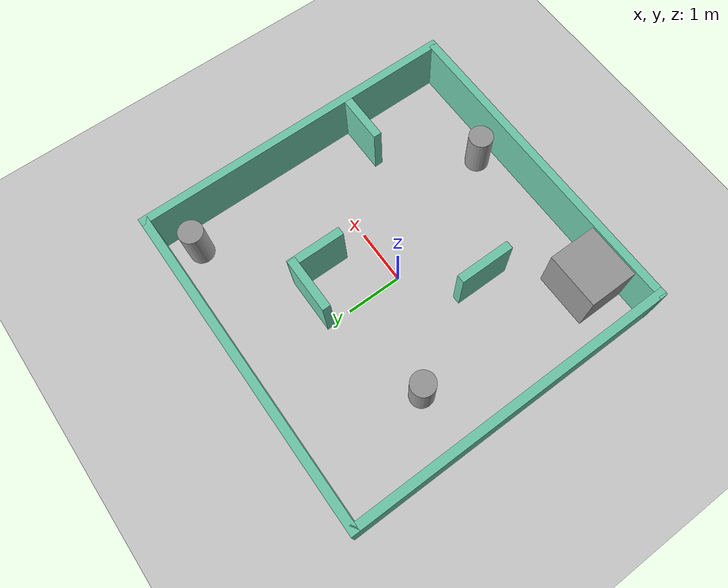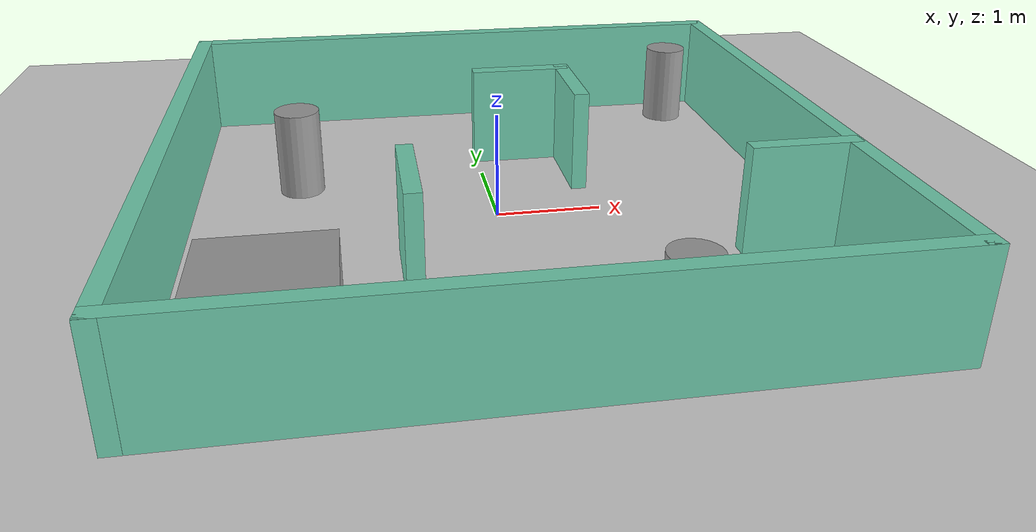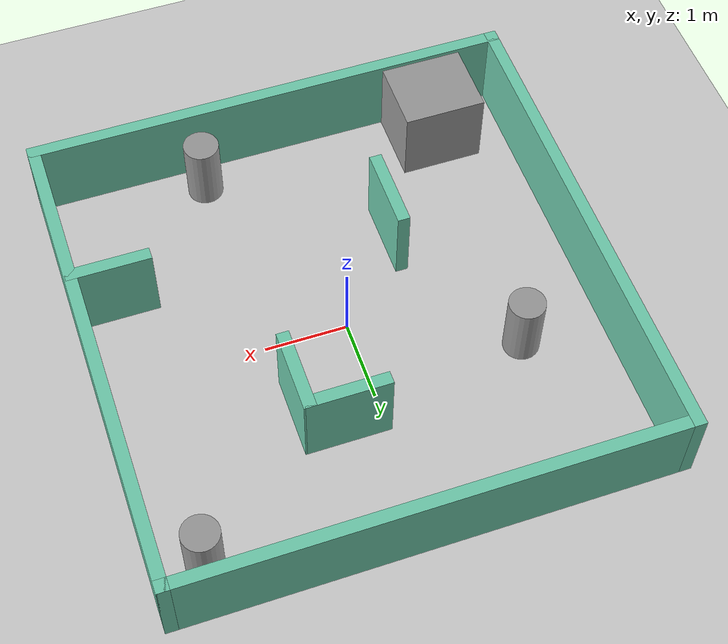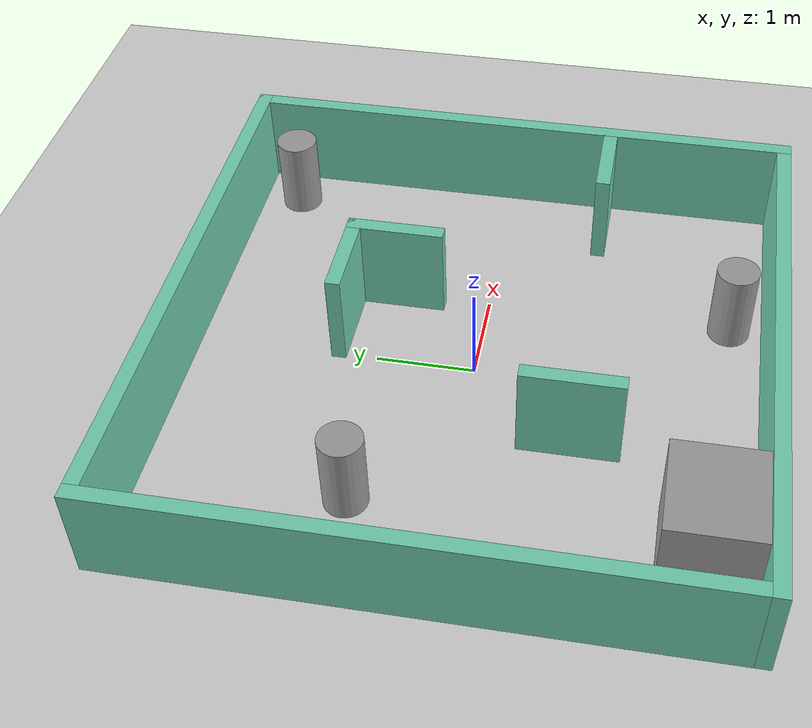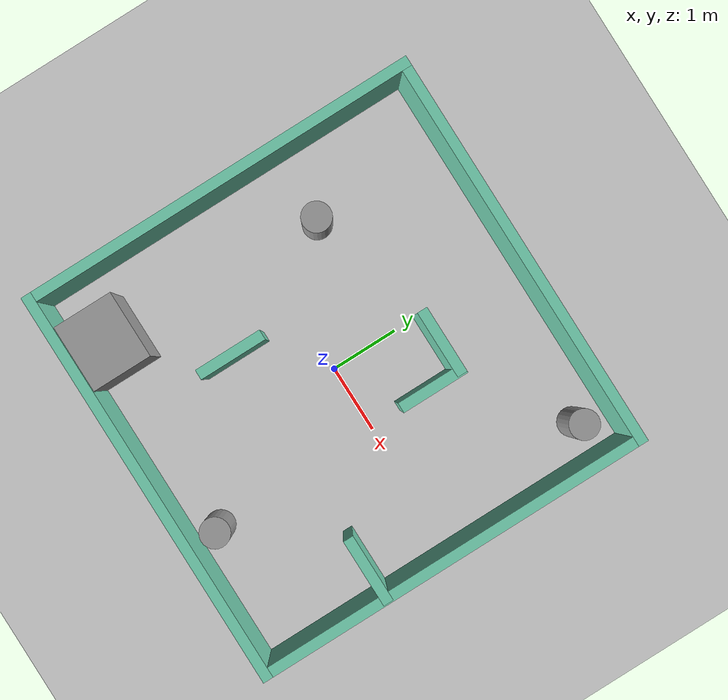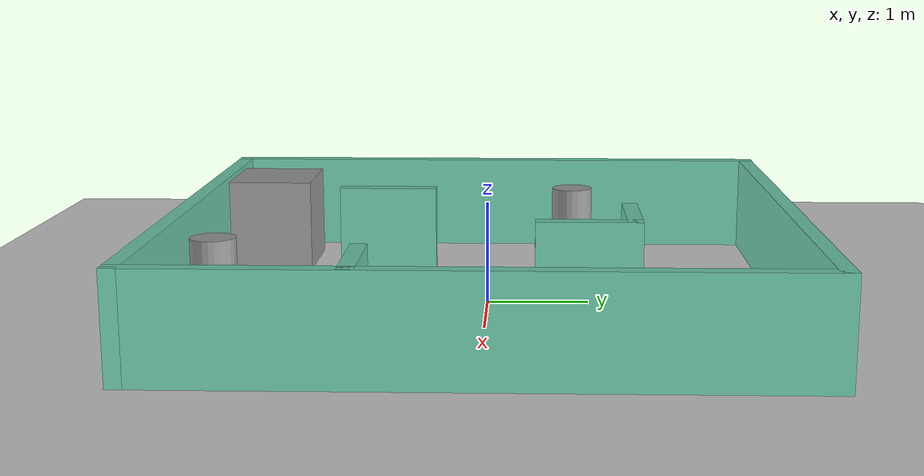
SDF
<sdf version="1.7">
 <world name="default">
  <light name="sun" type="directional">
   <pose>0 0 10 0 -0 0</pose>
   <diffuse>0.8 0.8 0.8 1</diffuse>
   <specular>0.2 0.2 0.2 1</specular>
   <attenuation>
    <range>1000</range>
    <constant>0.9</constant>
    <linear>0.01</linear>
    <quadratic>0.001</quadratic>
   </attenuation>
   <direction>-0.5 0.1 -0.9</direction>
   <spot><inner_angle>0</inner_angle><outer_angle>0</outer_angle><falloff>0</falloff></spot>
  </light>
  <model name="ground_plane">
   <static>1</static>
   <link name="link">
    <collision name="collision">
     <geometry><plane><normal>0 0 1</normal><size>100 100</size></plane></geometry>
     <surface>
      <contact><collide_bitmask>65535</collide_bitmask></contact>
      <friction><ode><mu>100</mu><mu2>50</mu2></ode></friction>
     </surface>
    </collision>
    <visual name="visual">
     <cast_shadows>0</cast_shadows>
     <geometry><plane><normal>0 0 1</normal><size>100 100</size></plane></geometry>
     <material>
      <script><uri>file://media/materials/scripts/gazebo.material</uri><name>Gazebo/Grey</name></script>
     </material>
    </visual>
   </link>
  </model>
  <gravity>0 0 -9.8</gravity>
  <magnetic_field>6e-06 2.3e-05 -4.2e-05</magnetic_field>
  <atmosphere type="adiabatic"/>
  <physics type="ode">
   <max_step_size>0.001</max_step_size>
   <real_time_factor>1</real_time_factor>
   <real_time_update_rate>1000</real_time_update_rate>
  </physics>
  <scene><ambient>0.4 0.4 0.4 1</ambient><background>0.7 0.7 0.7 1</background><shadows>1</shadows></scene>
  <spherical_coordinates>
   <surface_model>EARTH_WGS84</surface_model>
   <latitude_deg>0</latitude_deg>
   <longitude_deg>0</longitude_deg>
   <elevation>0</elevation>
   <heading_deg>0</heading_deg>
  </spherical_coordinates>
  <model name="training_maze">
   <pose>0.008707 -0.00051 0 0 -0 0</pose>
   <link name="Wall_0">
    <collision name="Wall_0_Collision">
     <geometry><box><size>6 0.15 1</size></box></geometry>
     <pose>0 0 0.5 0 -0 0</pose>
    </collision>
    <visual name="Wall_0_Visual">
     <pose>0 0 0.5 0 -0 0</pose>
     <geometry><box><size>6 0.15 1</size></box></geometry>
     <material>
      <script><uri>file://media/materials/scripts/gazebo.material</uri><name>Gazebo/Grey</name></script>
      <ambient>0.435294 0.796078 0.67451 1</ambient>
     </material>
     <meta><layer>0</layer></meta>
    </visual>
    <pose>0 -2.925 0 0 -0 3.14159</pose>
   </link>
   <link name="Wall_11">
    <collision name="Wall_11_Collision">
     <geometry><box><size>1 0.15 1</size></box></geometry>
     <pose>0 0 0.5 0 -0 0</pose>
    </collision>
    <visual name="Wall_11_Visual">
     <pose>0 0 0.5 0 -0 0</pose>
     <geometry><box><size>1 0.15 1</size></box></geometry>
     <material>
      <script><uri>file://media/materials/scripts/gazebo.material</uri><name>Gazebo/Grey</name></script>
      <ambient>0.435294 0.796078 0.67451 1</ambient>
     </material>
     <meta><layer>0</layer></meta>
    </visual>
    <pose>0.453069 1.39255 0 0 -0 0</pose>
   </link>
   <link name="Wall_12">
    <collision name="Wall_12_Collision">
     <geometry><box><size>1 0.15 1</size></box></geometry>
     <pose>0 0 0.5 0 -0 0</pose>
    </collision>
    <visual name="Wall_12_Visual">
     <pose>0 0 0.5 0 -0 0</pose>
     <geometry><box><size>1 0.15 1</size></box></geometry>
     <material>
      <script><uri>file://media/materials/scripts/gazebo.material</uri><name>Gazebo/Grey</name></script>
      <ambient>0.435294 0.796078 0.67451 1</ambient>
     </material>
     <meta><layer>0</layer></meta>
    </visual>
    <pose>0.898183 0.967546 0 0 -0 -1.5708</pose>
   </link>
   <link name="Wall_18">
    <collision name="Wall_18_Collision">
     <geometry><box><size>1 0.15 1</size></box></geometry>
     <pose>0 0 0.5 0 -0 0</pose>
    </collision>
    <visual name="Wall_18_Visual">
     <pose>0 0 0.5 0 -0 0</pose>
     <geometry><box><size>1 0.15 1</size></box></geometry>
     <material>
      <script><uri>file://media/materials/scripts/gazebo.material</uri><name>Gazebo/Grey</name></script>
      <ambient>0.435294 0.796078 0.67451 1</ambient>
     </material>
     <meta><layer>0</layer></meta>
    </visual>
    <pose>2.48423 -1.04173 0 0 -0 0</pose>
   </link>
   <link name="Wall_3">
    <collision name="Wall_3_Collision">
     <geometry><box><size>6 0.15 1</size></box></geometry>
     <pose>0 0 0.5 0 -0 0</pose>
    </collision>
    <visual name="Wall_3_Visual">
     <pose>0 0 0.5 0 -0 0</pose>
     <geometry><box><size>6 0.15 1</size></box></geometry>
     <material>
      <script><uri>file://media/materials/scripts/gazebo.material</uri><name>Gazebo/Grey</name></script>
      <ambient>0.435294 0.796078 0.67451 1</ambient>
     </material>
     <meta><layer>0</layer></meta>
    </visual>
    <pose>-2.925 -0 0 0 -0 1.5708</pose>
   </link>
   <link name="Wall_4">
    <collision name="Wall_4_Collision">
     <geometry><box><size>6 0.15 1</size></box></geometry>
     <pose>0 0 0.5 0 -0 0</pose>
    </collision>
    <visual name="Wall_4_Visual">
     <pose>0 0 0.5 0 -0 0</pose>
     <geometry><box><size>6 0.15 1</size></box></geometry>
     <material>
      <script><uri>file://media/materials/scripts/gazebo.material</uri><name>Gazebo/Grey</name></script>
      <ambient>0.435294 0.796078 0.67451 1</ambient>
     </material>
     <meta><layer>0</layer></meta>
    </visual>
    <pose>0 2.925 0 0 -0 0</pose>
   </link>
   <link name="Wall_5">
    <collision name="Wall_5_Collision">
     <geometry><box><size>6 0.15 1</size></box></geometry>
     <pose>0 0 0.5 0 -0 0</pose>
    </collision>
    <visual name="Wall_5_Visual">
     <pose>0 0 0.5 0 -0 0</pose>
     <geometry><box><size>6 0.15 1</size></box></geometry>
     <material>
      <script><uri>file://media/materials/scripts/gazebo.material</uri><name>Gazebo/Grey</name></script>
      <ambient>0.435294 0.796078 0.67451 1</ambient>
     </material>
     <meta><layer>0</layer></meta>
    </visual>
    <pose>2.925 -0 0 0 -0 -1.5708</pose>
   </link>
   <link name="Wall_9">
    <collision name="Wall_9_Collision">
     <geometry><box><size>1 0.15 1</size></box></geometry>
     <pose>0 0 0.5 0 -0 0</pose>
    </collision>
    <visual name="Wall_9_Visual">
     <pose>0 0 0.5 0 -0 0</pose>
     <geometry><box><size>1 0.15 1</size></box></geometry>
     <material>
      <script><uri>file://media/materials/scripts/gazebo.material</uri><name>Gazebo/Grey</name></script>
      <ambient>0.435294 0.796078 0.67451 1</ambient>
     </material>
     <meta><layer>0</layer></meta>
    </visual>
    <pose>-0.897 -1.061 0 0 -0 -1.5708</pose>
   </link>
   <static>1</static>
  </model>
  <model name="unit_cylinder_clone">
   <pose>1 -2.51219 0.421971 -0 -0 -0</pose>
   <link name="link">
    <inertial>
     <mass>1</mass>
     <inertia><ixx>0.145833</ixx><ixy>0</ixy><ixz>0</ixz><iyy>0.145833</iyy><iyz>0</iyz><izz>0.125</izz></inertia>
    </inertial>
    <collision name="collision">
     <geometry><cylinder><radius>0.215827</radius><length>0.843946</length></cylinder></geometry>
    </collision>
    <visual name="visual">
     <geometry><cylinder><radius>0.215827</radius><length>0.843946</length></cylinder></geometry>
     <material>
      <script><name>Gazebo/Grey</name><uri>file://media/materials/scripts/gazebo.material</uri></script>
     </material>
    </visual>
   </link>
  </model>
  <model name="unit_cylinder_clone_0">
   <pose>2.40416 2.42343 0.421967 0 -0 0</pose>
   <link name="link">
    <inertial>
     <mass>1</mass>
     <inertia><ixx>0.145833</ixx><ixy>0</ixy><ixz>0</ixz><iyy>0.145833</iyy><iyz>0</iyz><izz>0.125</izz></inertia>
    </inertial>
    <collision name="collision">
     <geometry><cylinder><radius>0.215827</radius><length>0.843946</length></cylinder></geometry>
    </collision>
    <visual name="visual">
     <geometry><cylinder><radius>0.215827</radius><length>0.843946</length></cylinder></geometry>
     <material>
      <script><name>Gazebo/Grey</name><uri>file://media/materials/scripts/gazebo.material</uri></script>
     </material>
    </visual>
   </link>
  </model>
  <light name="user_point_light_0" type="point">
   <pose>2.5031 -0.229726 1 0 -0 0</pose>
   <diffuse>0.5 0.5 0.5 1</diffuse>
   <specular>0.1 0.1 0.1 1</specular>
   <attenuation>
    <range>20</range>
    <constant>0.5</constant>
    <linear>0.01</linear>
    <quadratic>0.001</quadratic>
   </attenuation>
   <cast_shadows>0</cast_shadows>
   <direction>0 0 -1</direction>
   <spot><inner_angle>0</inner_angle><outer_angle>0</outer_angle><falloff>0</falloff></spot>
  </light>
  <light name="user_point_light_1" type="point">
   <pose>-2.10651 1.87542 1 0 -0 0</pose>
   <diffuse>0.5 0.5 0.5 1</diffuse>
   <specular>0.1 0.1 0.1 1</specular>
   <attenuation>
    <range>20</range>
    <constant>0.5</constant>
    <linear>0.01</linear>
    <quadratic>0.001</quadratic>
   </attenuation>
   <cast_shadows>0</cast_shadows>
   <direction>0 0 -1</direction>
   <spot><inner_angle>0</inner_angle><outer_angle>0</outer_angle><falloff>0</falloff></spot>
  </light>
  <model name="unit_cylinder_clone_clone">
   <pose>-1.83788 0.878749 0.421967 0 -0 0</pose>
   <link name="link">
    <inertial>
     <mass>1</mass>
     <inertia><ixx>0.145833</ixx><ixy>0</ixy><ixz>0</ixz><iyy>0.145833</iyy><iyz>0</iyz><izz>0.125</izz></inertia>
    </inertial>
    <collision name="collision">
     <geometry><cylinder><radius>0.215827</radius><length>0.843946</length></cylinder></geometry>
    </collision>
    <visual name="visual">
     <geometry><cylinder><radius>0.215827</radius><length>0.843946</length></cylinder></geometry>
     <material>
      <script><name>Gazebo/Grey</name><uri>file://media/materials/scripts/gazebo.material</uri></script>
     </material>
    </visual>
   </link>
  </model>
  <model name="unit_box">
   <pose>-1.94077 -2.46692 0.449524 0 -0 1e-05</pose>
   <link name="link">
    <inertial>
     <mass>1</mass>
     <inertia>
      <ixx>0.166667</ixx>
      <ixy>0</ixy>
      <ixz>0</ixz>
      <iyy>0.166667</iyy>
      <iyz>0</iyz>
      <izz>0.166667</izz>
     </inertia>
    </inertial>
    <collision name="collision"><geometry><box><size>1 0.999997 1</size></box></geometry></collision>
    <visual name="visual">
     <geometry><box><size>1 0.999997 1</size></box></geometry>
     <material>
      <script><name>Gazebo/Grey</name><uri>file://media/materials/scripts/gazebo.material</uri></script>
     </material>
    </visual>
   </link>
  </model>
 </world>
</sdf>
